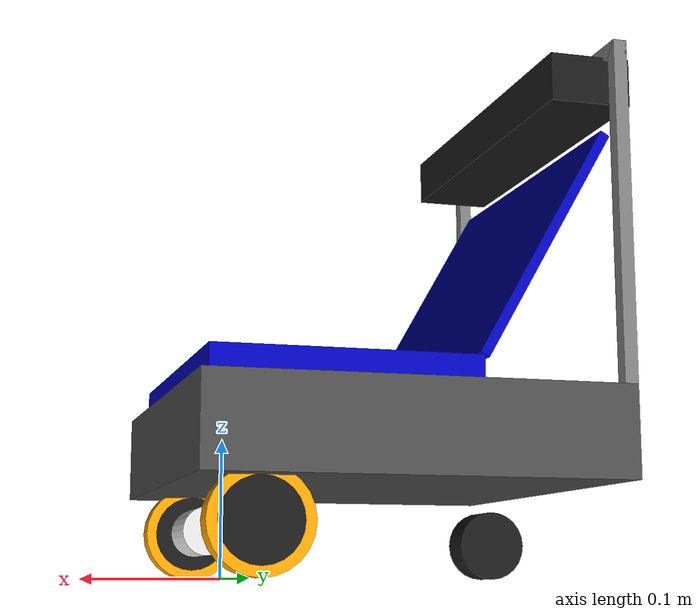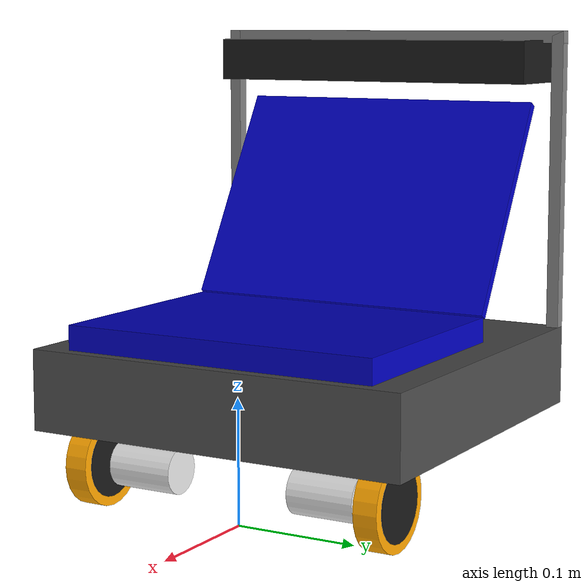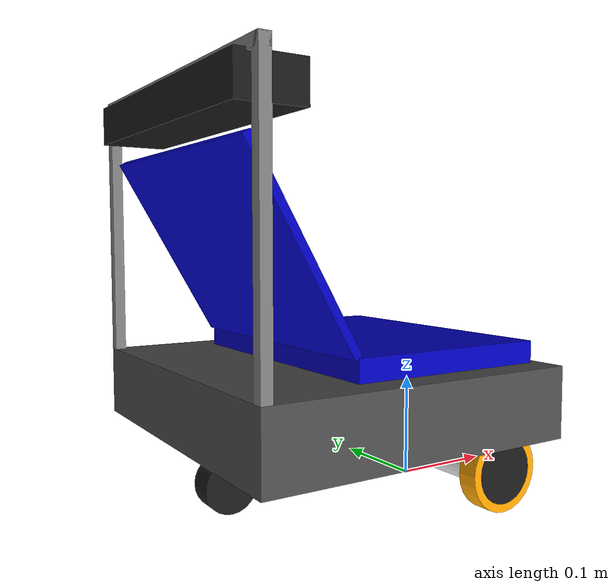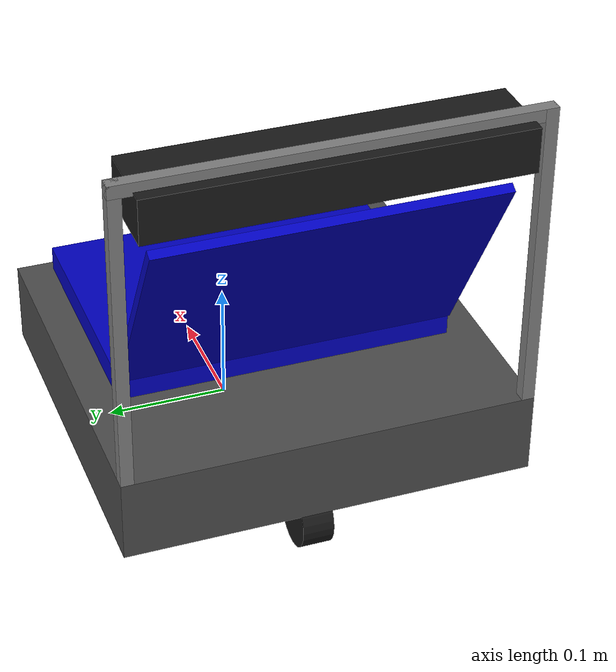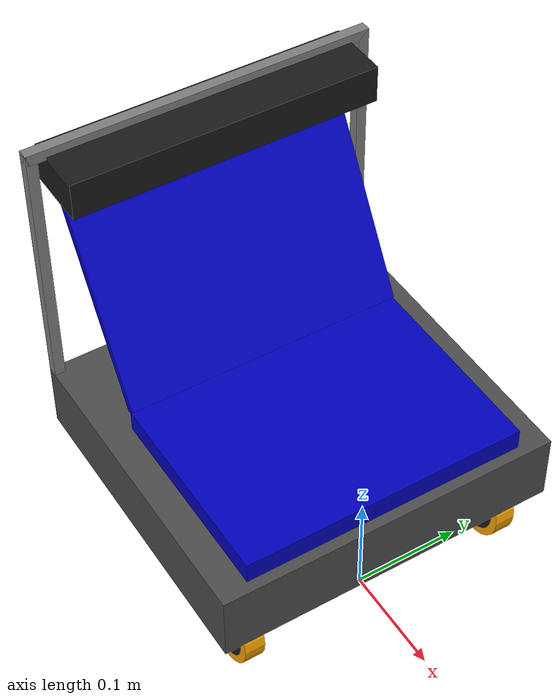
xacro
<?xml version="1.0" ?>

<robot name="rover" xmlns:xacro="http://www.ros.org/wiki/xacro" >
    <!-- Colors -->
    <xacro:macro name="color_blue">
        <material name="blue">
            <color rgba="0 0 0.75 1.0" />
        </material>
    </xacro:macro>

    <xacro:macro name="color_yellow">
        <material name="yellow">
            <color rgba="0.75 0.75 0 1.0" />
        </material>
    </xacro:macro>

    <xacro:macro name="color_red_green">
        <material name="red_green">
            <color rgba="1.0 1.0 0 1.0" />
        </material>
    </xacro:macro>

    <xacro:macro name="color_black">
        <material name="black">
            <color rgba="0.1 0.1 0.1 1.0" />
        </material>
    </xacro:macro>

    <xacro:macro name="color_dark_gray">
        <material name="dark_gray">
            <color rgba="0.3 0.3 0.3 1.0" />
        </material>
    </xacro:macro>

    <xacro:macro name="color_gray">
        <material name="gray">
            <color rgba="0.5 0.5 0.5 1.0" />
        </material>
    </xacro:macro>

    <xacro:macro name="color_silver">
        <material name="silver">
            <color rgba="0.9 0.9 0.9 1.0" />
        </material>
    </xacro:macro>

    <xacro:macro name="color_green">
        <material name="green">
            <color rgba="0 0.75 0.1 1.0" />
        </material>
    </xacro:macro>

    <xacro:macro name="color_olive">
        <material name="olive">
            <color rgba="0.5 0.5 0 1.0" />
        </material>
    </xacro:macro>

    <xacro:macro name="color_orange">
        <material name="orange">
            <color rgba="1.0 0.65 0 1.0" />
        </material>
    </xacro:macro>

    <xacro:macro name="color_aqua">
        <material name="aqua">
            <color rgba="0.25 0.3 0 1.0" />
        </material>
    </xacro:macro>

    <xacro:macro name="color_dark_purple">
        <material name="dark_purple">
            <color rgba="0.3 0 0.3 1.0" />
        </material>
    </xacro:macro>

    <xacro:macro name="color_magenta">
        <material name="magenta">
            <color rgba="1.0 0 1.0 0.5" />
        </material>
    </xacro:macro>

    <!-- useful macros -->
    <xacro:macro name="prism" params="name x y z *color">
        <link name="${name}">
            <visual>
                <geometry>
                    <box size="${x} ${y} ${z}" />
                </geometry>
                <xacro:insert_block name="color" />
            </visual>
            <collision>
                <geometry>
                    <box size="${x} ${y} ${z}" />
                </geometry>
            </collision>
        </link>
    </xacro:macro>

    <xacro:macro name="cyl" params="name radius length *color">
        <link name="${name}">
            <visual>
                <geometry>
                    <cylinder radius="${radius}" length="${length}" />
                </geometry>
                <xacro:insert_block name="color" />
            </visual>
            <collision>
                <geometry>
                    <cylinder radius="${radius}" length="${length}" />
                </geometry>
            </collision>
        </link>
    </xacro:macro>

    <xacro:property name="wheel_diameter" value="0.07265" />
    <xacro:property name="wheel_thickness" value="0.02" />
    <xacro:property name="motor_length" value="0.055" />
    <xacro:macro name="wheel" params="name parent offsetx offsety offsetz side">
        <xacro:cyl name="${name}" radius="${wheel_diameter / 2}" length="${wheel_thickness - 0.001}">
            <xacro:color_orange />
        </xacro:cyl>
        <xacro:cyl name="${name}_inner" radius="${(wheel_diameter / 2) - 0.0075}" length="${wheel_thickness}">
            <xacro:color_black />
        </xacro:cyl>
        <xacro:cyl name="${name}_motor" radius="0.0185" length="${motor_length}">
            <xacro:color_silver />
        </xacro:cyl>
        <xacro:cyl name="${name}_motor_axle" radius="0.003" length="0.01">
            <xacro:color_silver />
        </xacro:cyl>
        <joint name="${name}_motor_joint" type="fixed">
            <parent link="${parent}" />
            <child link="${name}_motor" />
            <origin xyz="${offsetx} ${offsety + side * (0.01 + motor_length / 2)} ${offsetz}" rpy="${halfpi * side} 0 0" />
        </joint>
        <joint name="${name}_motor_axle_joint" type="fixed">
            <parent link="${name}_motor" />
            <child link="${name}_motor_axle" />
            <axis xyz="0 1 0" />
            <origin xyz="0 0 ${((motor_length + 0.01) / 2)}" rpy="0 0 0" />
        </joint>
        <joint name="${name}_joint" type="fixed">
            <parent link="${name}_motor_axle" />
            <child link="${name}" />
            <axis xyz="0 1 0" />
            <origin xyz="0 0 ${((0.01 + wheel_thickness) / 2)}" rpy="0 0 0" />
        </joint>
        <joint name="${name}_inner_joint" type="fixed">
            <parent link="${name}" />
            <child link="${name}_inner" />
            <origin xyz="0 0 0" rpy="0 0 0" />
        </joint>
    </xacro:macro>

    <!-- Links -->
    <link name="base_link" />
    <link name="base_footprint" />

    <!-- useful definition -->
    <xacro:property name="halfpi" value="1.57079633" />
    <xacro:property name="sixthpi" value="0.523598776" />

    <!-- Robot movement base representation -->
    <xacro:property name="robot_base_height" value="0.065" />
    <xacro:property name="robot_base_length" value="0.30" />
    <xacro:property name="robot_base_width" value="0.32" />
    <xacro:prism name="robot_base" x="${robot_base_length}" y="${robot_base_width}" z="${robot_base_height}">
        <xacro:color_dark_gray />
    </xacro:prism>
    <xacro:prism name="robot_back_left" x="0.01" y="0.01" z="0.245">
        <xacro:color_gray />
    </xacro:prism>
    <xacro:prism name="robot_back_right" x="0.01" y="0.01" z="0.245">
        <xacro:color_gray />
    </xacro:prism>
    <xacro:prism name="robot_back_top" x="0.01" y="${robot_base_width}" z="0.01">
        <xacro:color_gray />
    </xacro:prism>

    <xacro:property name="laptop_length" value="0.19" />
    <xacro:property name="laptop_width" value="0.265" />
    <xacro:prism name="laptop_lid" x="${laptop_length}" y="${laptop_width}" z="0.0075">
        <xacro:color_blue />
    </xacro:prism>
    <xacro:prism name="laptop_base" x="${laptop_length}" y="${laptop_width}" z="0.02">
        <xacro:color_blue />
    </xacro:prism>

    <xacro:property name="fwd_offset" value="-.105" />
    <xacro:property name="wid_offset" value=".155" />
    <xacro:property name="height_offset" value=".065" />

    <!-- wheels and locomotion -->
    <xacro:wheel name="left_wheel" parent="base_link" offsetx="0" offsety="0.1175" offsetz="${wheel_diameter / 2}" side="-1" />
    <xacro:wheel name="right_wheel" parent="base_link" offsetx="0" offsety="-0.1175" offsetz="${wheel_diameter / 2}" side="1" />
    <xacro:cyl name="caster" radius="0.025" length="0.025">
        <xacro:color_black />
    </xacro:cyl>
    <joint name="caster_joint" type="fixed">
        <parent link="base_link" />
        <child link="caster" />
        <origin xyz="${fwd_offset - 0.10} 0 0.025" rpy="${halfpi} 0 0" />
    </joint>

    <!-- kinect representation -->
    <xacro:prism name="openni_camera" x="0.06" y="0.285" z="0.035">
        <xacro:color_black />
    </xacro:prism>

    <!-- Joints -->
    <joint name="nav_joint" type="fixed">
        <parent link="base_footprint" />
        <child link="base_link" />
        <origin xyz="0 0 0" />
    </joint>
    <joint name="base_joint" type="fixed">
        <parent link="base_link" />
        <child link="robot_base" />
        <origin xyz="${fwd_offset} 0 ${height_offset + (robot_base_height / 2)}" rpy="0 0 0" />
    </joint>

    <joint name="back_left_joint" type="fixed">
        <parent link="robot_base" />
        <child link="robot_back_left" />
        <origin xyz="${0.005 - robot_base_length / 2} ${robot_base_width / 2 - 0.005} ${0.245 / 2 + robot_base_height / 2}" rpy="0 0 0" />
    </joint>

    <joint name="back_right_joint" type="fixed">
        <parent link="robot_base" />
        <child link="robot_back_right" />
        <origin xyz="${0.005 - robot_base_length / 2} -${robot_base_width / 2 - 0.005} ${0.245 / 2 + robot_base_height / 2}" rpy="0 0 0" />
    </joint>

    <joint name="back_top_joint" type="fixed">
        <parent link="robot_base" />
        <child link="robot_back_top" />
        <origin xyz="${0.005 - robot_base_length / 2} 0 ${0.24 + robot_base_height / 2}" rpy="0 0 0" />
    </joint>

    <joint name="laptop_joint" type="fixed">
        <parent link="robot_base" />
        <child link="laptop_base" />
        <origin xyz="0.045 0 ${0.01 + robot_base_height / 2}" rpy="0 0 0" />
    </joint>

    <joint name="lid_joint" type="fixed">
        <parent link="laptop_base" />
        <child link="laptop_lid" />
        <origin xyz="-${laptop_length / 2 + laptop_length / 4} 0 ${laptop_length * 0.866025404 /2 + 0.01}" rpy="0 ${halfpi - sixthpi} 0" />
    </joint>

    <joint name="kinect_joint" type="fixed">
        <parent link="robot_base" />
        <child link="openni_camera" />
        <origin xyz="-0.13 0 ${0.22 + robot_base_height / 2}" rpy="0 0 0" />
    </joint>

</robot>
